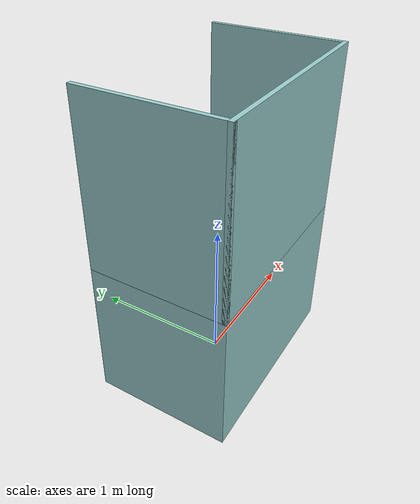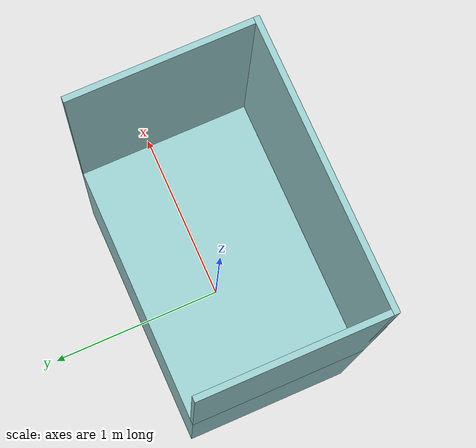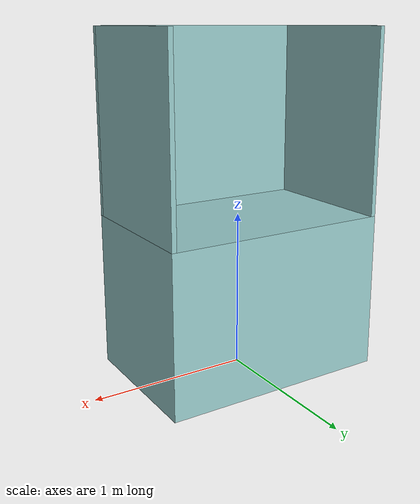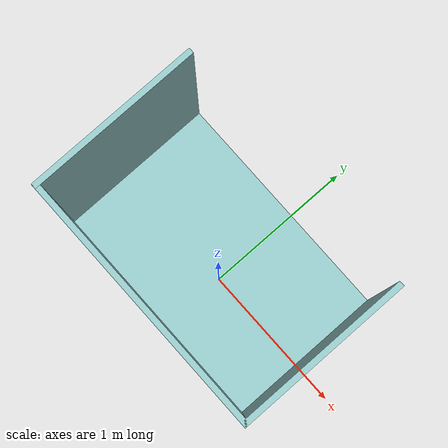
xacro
<?xml version="1.0"?>
<robot xmlns:xacro="http://www.ros.org/wiki/xacro">

    <xacro:include filename="inertial_macros.xacro"/>
    <xacro:property name="robot_base_length" value="0.45" />
    <xacro:property name="robot_base_width" value="0.52" />
    <xacro:property name="robot_base_height" value="0.99" />
    <xacro:property name="robotcell_length" value="1.44" />
    <xacro:property name="robotcell_width" value="0.94" />
    <xacro:property name="robotcell_height" value="1.16" />
    <xacro:property name="shield_thickness" value="0.03" />

    <material name="gray">
        <color rgba="0.6 0.8 0.8 1" />
    </material>

    <link name="world"></link>

    <link name="robotcell_link">
        <origin xyz="0 0 0" rpy="0 0 0" />
    </link>

    <link name="shield_front">
        <collision>
            <origin rpy="0 0 0" xyz="0 0 0" />
            <geometry>
                <box size="${robotcell_length} ${shield_thickness} ${shield_thickness}" />
            </geometry>
            <material name="gray"/>
        </collision>
        <xacro:inertial_box mass="5" x="${robotcell_length}" y="${shield_thickness}" z="${robotcell_height}">
            <origin rpy="0 0 0" xyz="0 0 0" />
        </xacro:inertial_box>
    </link>

    <link name="shield_rear">
        <visual>
            <origin rpy="0 0 0" xyz="0 0 0" />
            <geometry>
                <box size="${robotcell_length} ${shield_thickness} ${robotcell_height}" />
            </geometry>
            <material name="gray"/>
        </visual>
        <collision>
            <origin rpy="0 0 0 " xyz="0 0 0" />
            <geometry>
                <box size="${robotcell_length} ${shield_thickness} ${robotcell_height}" />
            </geometry>
            <material name="gray"/>
        </collision>
        <xacro:inertial_box mass="5" x="${robotcell_length}" y="${shield_thickness}" z="${robotcell_height}">
            <origin rpy="0 0 0" xyz="0 0 0" />
        </xacro:inertial_box>
    </link>

    <link name="shield_left">
        <visual>
            <origin rpy="0 0 0" xyz="0 0 0" />
            <geometry>
                <box size="${shield_thickness} ${robotcell_width} ${robotcell_height}" />
            </geometry>
            <material name="gray"/>
        </visual>
        <collision>
            <origin rpy="0 0 0" xyz="0 0 0" />
            <geometry>
                <box size="${shield_thickness} ${robotcell_width} ${robotcell_height}" />
            </geometry>
            <material name="gray"/>
        </collision>
        <xacro:inertial_box mass="5" x="${shield_thickness}" y="${robotcell_width}" z="${robotcell_height}">
            <origin rpy="0 0 0" xyz="0 0 0" />
        </xacro:inertial_box>
    </link>

    <link name="shield_right">
        <visual>
            <origin rpy="0 0 0" xyz="0 0 0" />
            <geometry>
                <box size="${shield_thickness} ${robotcell_width} ${robotcell_height}" />
            </geometry>
            <material name="gray"/>
        </visual>
        <collision>
            <origin rpy="0 0 0" xyz="0 0 0" />
            <geometry>
                <box size="${shield_thickness} ${robotcell_width} ${robotcell_height}" />
            </geometry>
            <material name="gray"/>
        </collision>
        <xacro:inertial_box mass="5" x="${shield_thickness}" y="${robotcell_width}" z="${robotcell_height}">
            <origin rpy="0 0 0" xyz="0 0 0" />
        </xacro:inertial_box>
    </link>

    <link name="robotcell_base">
        <visual>
            <origin rpy="0 0 0" xyz="0 0 ${robot_base_height/2}" />
            <geometry>
                <box size="${robotcell_length} ${robotcell_width} ${robot_base_height}" />
            </geometry>
            <material name="gray"/>
        </visual>
        <collision>
            <origin rpy="0 0 0" xyz="0 0 ${robot_base_height/2}" />
            <geometry>
                <box size="${robotcell_length} ${robotcell_width} ${robot_base_height}" />
            </geometry>
            <material name="gray"/>
        </collision>
        <xacro:inertial_box mass="70" x="${robotcell_length}" y="${robotcell_width}" z="${robot_base_height}">
            <origin rpy="0 0 0" xyz="0 0 0" />
        </xacro:inertial_box>
    </link>

    <joint name="world_to_robotcell_joint" type="fixed">
        <parent link="world" />
        <child link="robotcell_link" />
        <origin xyz="0 0 0" rpy="0 0 0" />
    </joint>

    <joint name="robotcell_joint_to_front" type="fixed">
        <parent link="robotcell_link" />
        <child link="shield_front" />
        <origin xyz="0 ${robotcell_width/2-shield_thickness/2} ${robot_base_height+robotcell_height/2}" rpy="0 0 0" />
    </joint>

    <joint name="robotcell_joint_to_rear" type="fixed">
        <parent link="robotcell_link" />
        <child link="shield_rear" />
        <origin xyz="0 ${-robotcell_width/2+shield_thickness/2} ${robot_base_height+robotcell_height/2}" rpy="0 0 0" />
    </joint>

    <joint name="robotcell_joint_to_left" type="fixed">
        <parent link="robotcell_link" />
        <child link="shield_left" />
        <origin xyz="${-robotcell_length/2+shield_thickness/2} 0 ${robot_base_height+robotcell_height/2}" rpy="0 0 0" />
    </joint>

    <joint name="robotcell_joint_to_right" type="fixed">
        <parent link="robotcell_link" />
        <child link="shield_right" />
        <origin xyz="${robotcell_length/2-shield_thickness/2} 0 ${robot_base_height+robotcell_height/2}" rpy="0 0 0" />
    </joint>

    <joint name="robotcell_joint_to_robotcell_base" type="fixed">
        <parent link="robotcell_link" />
        <child link="robotcell_base" />
        <origin xyz="0 0 0" rpy="0 0 0" />
    </joint>

</robot>
